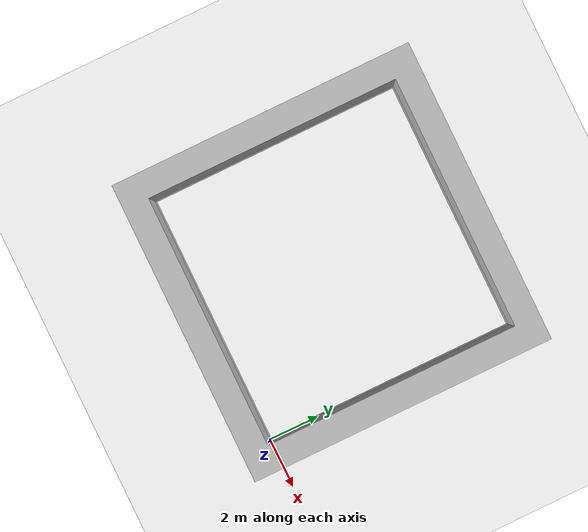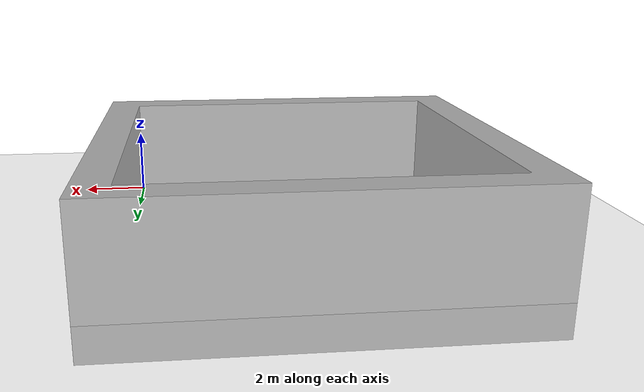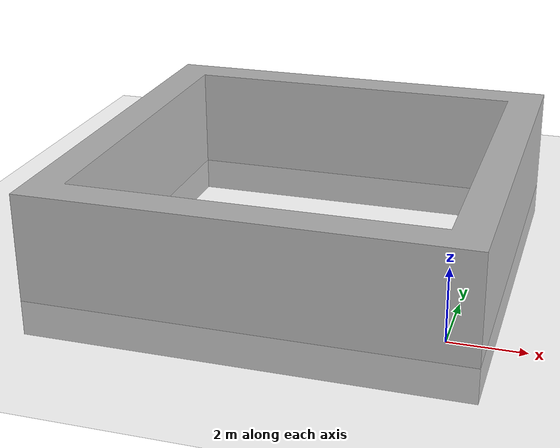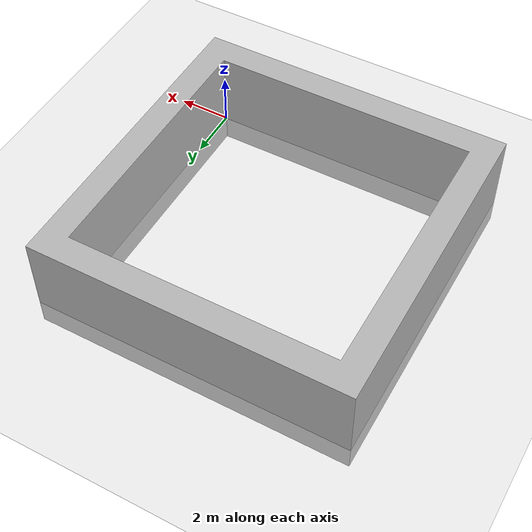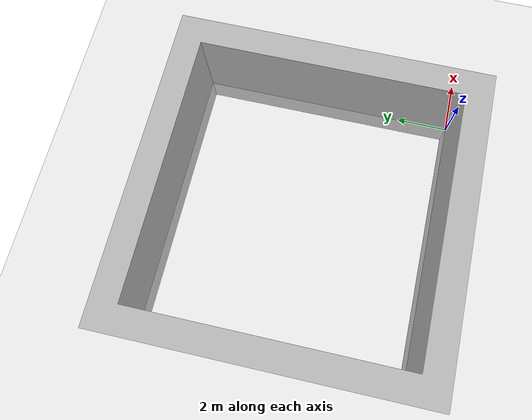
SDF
<sdf version="1.6">
 <world name="default">
  <light name="sun" type="directional">
   <cast_shadows>0</cast_shadows>
   <pose>0 0 10 0 -0 0</pose>
   <diffuse>0.8 0.8 0.8 1</diffuse>
   <specular>0.2 0.2 0.2 1</specular>
   <attenuation>
    <range>1000</range>
    <constant>0.9</constant>
    <linear>0.01</linear>
    <quadratic>0.001</quadratic>
   </attenuation>
   <direction>-0.5 0.1 -0.9</direction>
  </light>
  <include><uri>model://ground_plane</uri></include>
  <gravity>0 0 -9.8</gravity>
  <magnetic_field>6e-06 2.3e-05 -4.2e-05</magnetic_field>
  <atmosphere type="adiabatic"/>
  <physics name="default_physics" default="0" type="ode">
   <max_step_size>0.001</max_step_size>
   <real_time_factor>1</real_time_factor>
   <real_time_update_rate>1000</real_time_update_rate>
  </physics>
  <scene><ambient>0.4 0.4 0.4 1</ambient><background>0.7 0.7 0.7 1</background><shadows>0</shadows></scene>
  <spherical_coordinates>
   <surface_model>EARTH_WGS84</surface_model>
   <latitude_deg>0</latitude_deg>
   <longitude_deg>0</longitude_deg>
   <elevation>0</elevation>
   <heading_deg>0</heading_deg>
  </spherical_coordinates>
  <model name="lead_1">
   <pose>1 1 0 0 0 0</pose>
   <static>true</static>
   <link name="link_">
    <collision name="collision_lead_1">
     <geometry><mesh><uri>model://GraduateT/models/lead.dae</uri></mesh></geometry>
    </collision>
    <visual name="visual_lead_1">
     <geometry><mesh><uri>model://GraduateT/models/lead.dae</uri></mesh></geometry>
    </visual>
   </link>
  </model>
  <model name="environment_1">
   <static>true</static>
   <link name="link_">
    <collision name="environment_1">
     <geometry><mesh><uri>model://GraduateT/models/environment.dae</uri></mesh></geometry>
    </collision>
    <visual name="visual_environment_1">
     <geometry><mesh><uri>model://GraduateT/models/environment.dae</uri></mesh></geometry>
    </visual>
   </link>
  </model>
 </world>
</sdf>
